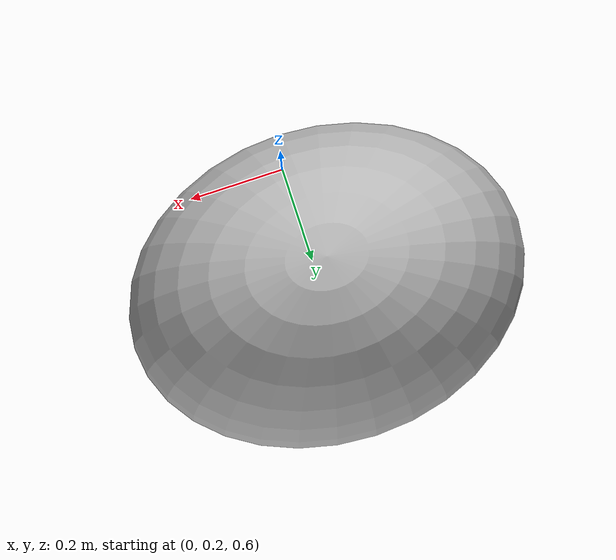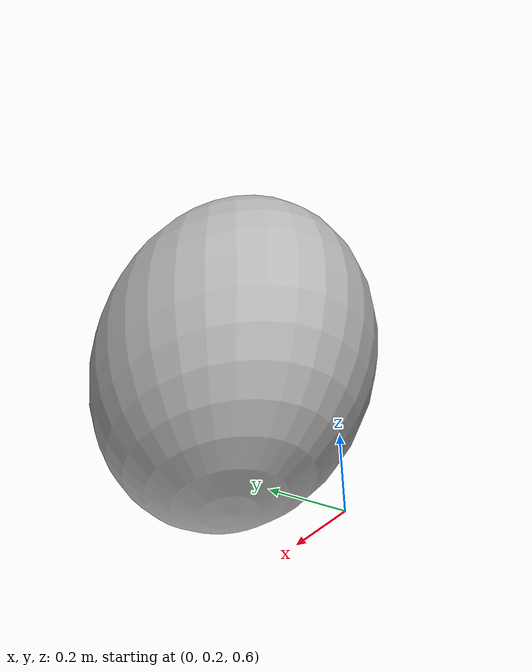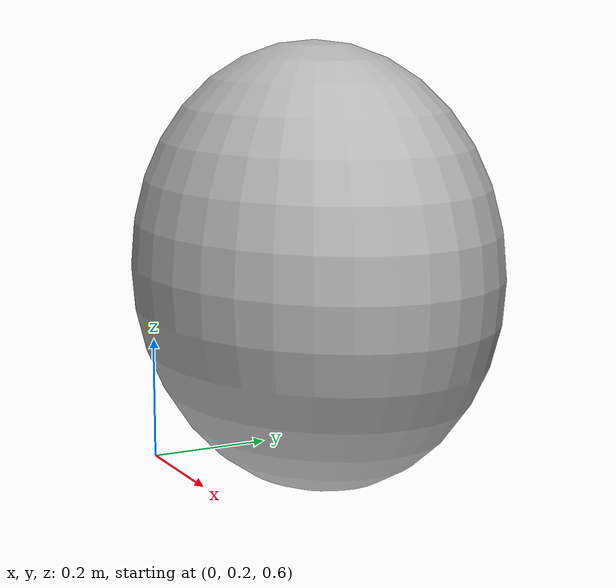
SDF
<?xml version="1.0" ?>
<sdf version="1.4">
  <model name="ellipsoid_obst_2">
    <pose>0.0 0.5 0.9 0 0 0</pose>
    <static>1</static>
    <link name="ellipsoid_obst_2_link">
      <collision name="ellipsoid_obst_2_link_collision">
	<geometry>
	    <box>
               <size>0.45 0.35 0.45</size>
            </box>
	</geometry>
	<surface>
	   <contact>
	      <ode/>
	   </contact>
	   <friction>
	      <ode/>
	   </friction>
	</surface>
      </collision>
      <visual name="ellipsoid_obst_2_visual">
        <geometry>
	   <mesh>
	     <uri>model://ellipsoid_obst_2/meshes/ellipsoid_obs_2_yaw.stl</uri>
             <scale>1 1 1</scale>
	   </mesh>
        </geometry>
      </visual>
      <self_collide>0</self_collide>
    </link>
  </model>
</sdf>
